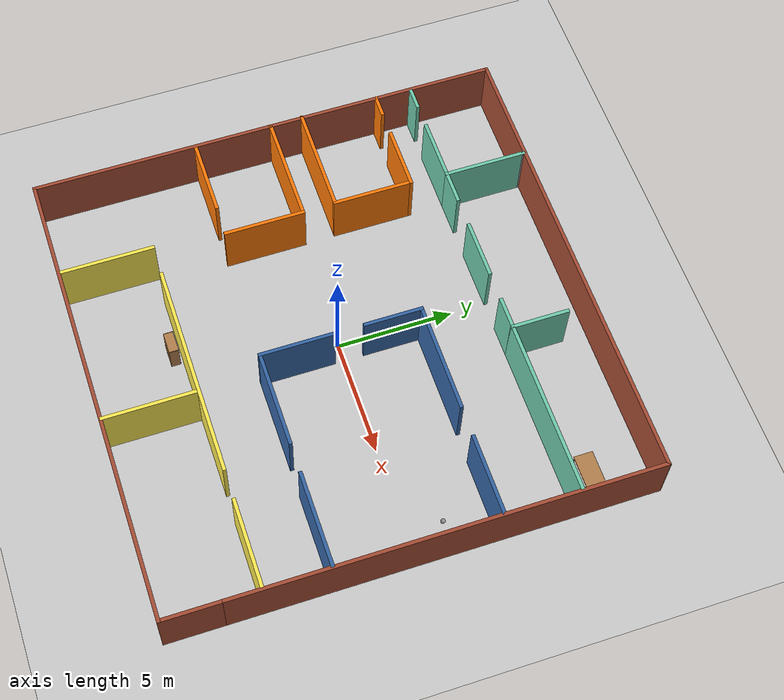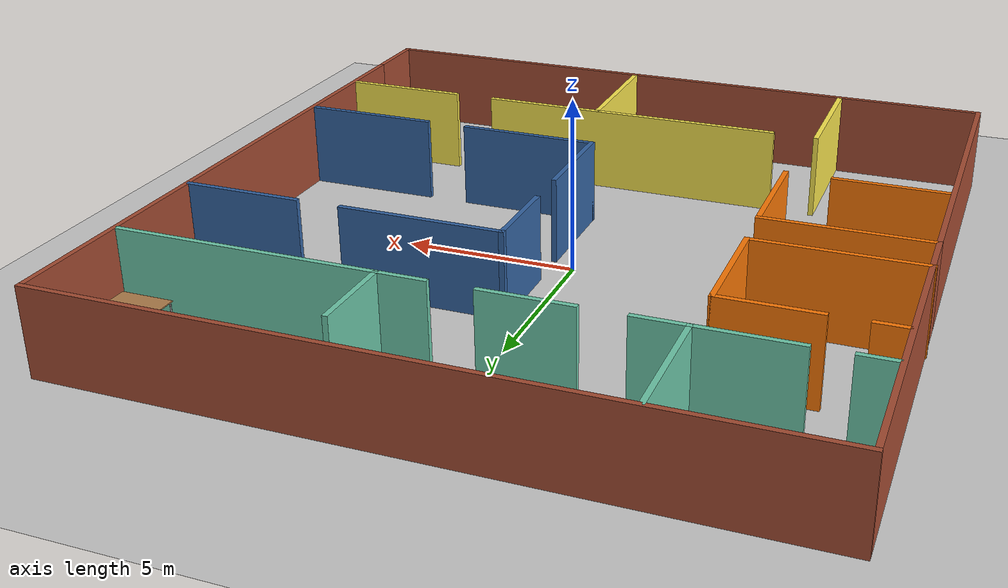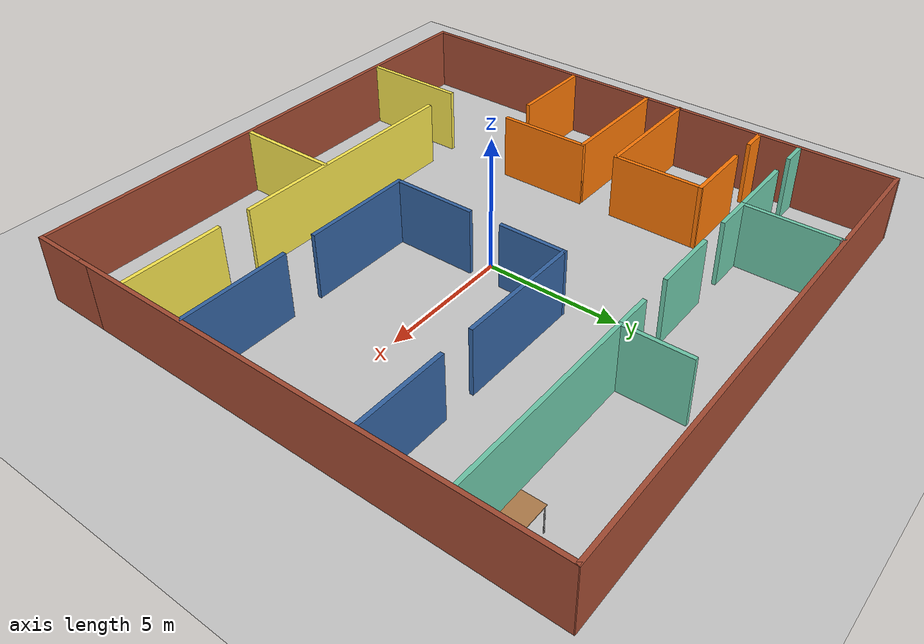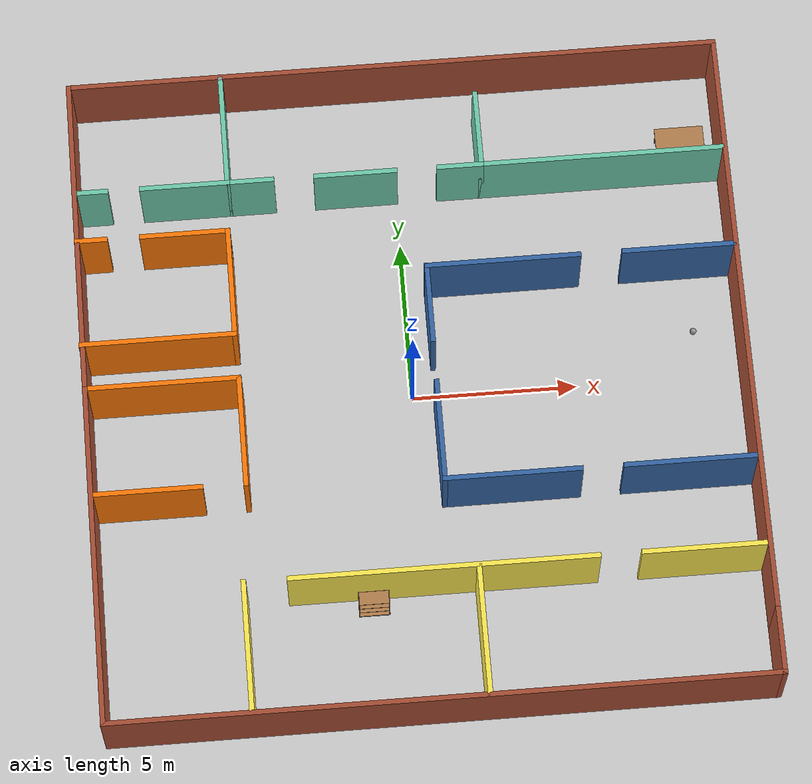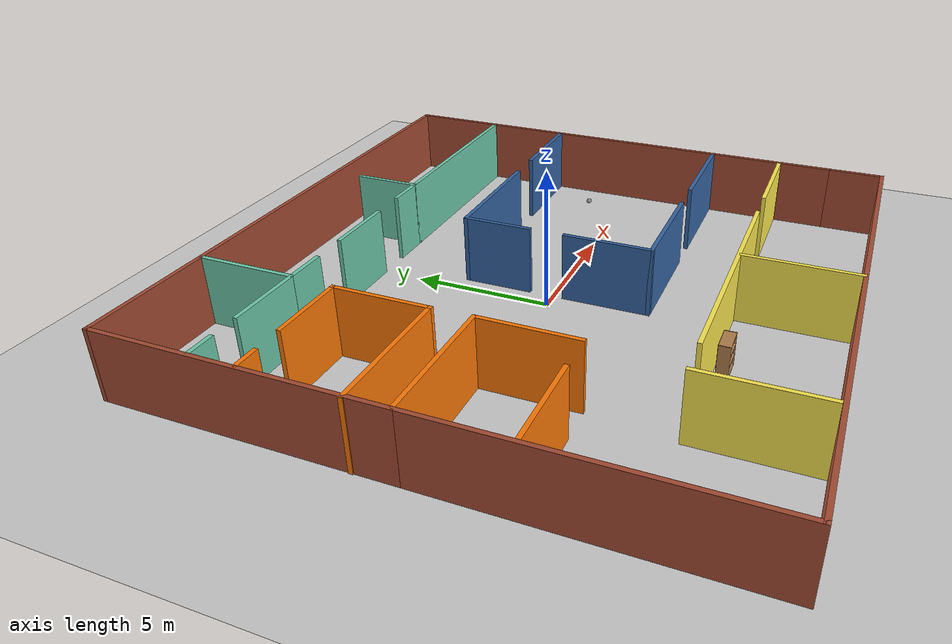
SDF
<sdf version="1.7">
 <world name="default">
  <plugin filename="libwelcome_message.so" name="hello"/>
  <light name="sun" type="directional">
   <pose>0 0 10 0 -0 0</pose>
   <diffuse>0.8 0.8 0.8 1</diffuse>
   <specular>0.2 0.2 0.2 1</specular>
   <attenuation>
    <range>1000</range>
    <constant>0.9</constant>
    <linear>0.01</linear>
    <quadratic>0.001</quadratic>
   </attenuation>
   <direction>-0.5 0.1 -0.9</direction>
   <spot><inner_angle>0</inner_angle><outer_angle>0</outer_angle><falloff>0</falloff></spot>
  </light>
  <model name="ground_plane">
   <static>1</static>
   <link name="link">
    <collision name="collision">
     <geometry><plane><normal>0 0 1</normal><size>100 100</size></plane></geometry>
     <surface>
      <contact><collide_bitmask>65535</collide_bitmask></contact>
      <friction><ode><mu>100</mu><mu2>50</mu2></ode></friction>
     </surface>
    </collision>
    <visual name="visual">
     <cast_shadows>0</cast_shadows>
     <geometry><plane><normal>0 0 1</normal><size>100 100</size></plane></geometry>
     <material>
      <script><uri>file://media/materials/scripts/gazebo.material</uri><name>Gazebo/Grey</name></script>
     </material>
    </visual>
   </link>
  </model>
  <gravity>0 0 -9.8</gravity>
  <magnetic_field>6e-06 2.3e-05 -4.2e-05</magnetic_field>
  <atmosphere type="adiabatic"/>
  <physics default="0" name="default_physics" type="ode">
   <max_step_size>0.001</max_step_size>
   <real_time_factor>1</real_time_factor>
   <real_time_update_rate>1000</real_time_update_rate>
  </physics>
  <scene><ambient>0.4 0.4 0.4 1</ambient><background>0.7 0.7 0.7 1</background><shadows>1</shadows></scene>
  <audio><device>default</device></audio>
  <spherical_coordinates>
   <surface_model>EARTH_WGS84</surface_model>
   <latitude_deg>0</latitude_deg>
   <longitude_deg>0</longitude_deg>
   <elevation>0</elevation>
   <heading_deg>0</heading_deg>
  </spherical_coordinates>
  <model name="Building">
   <pose>0.11271 -0.05702 0 0 -0 0</pose>
   <link name="Wall_20">
    <collision name="Wall_20_Collision">
     <geometry><box><size>10 0.15 2.5</size></box></geometry>
     <pose>0 0 1.25 0 -0 0</pose>
    </collision>
    <visual name="Wall_20_Visual">
     <pose>0 0 1.25 0 -0 0</pose>
     <geometry><box><size>10 0.15 2.5</size></box></geometry>
     <material>
      <script><uri>file://media/materials/scripts/gazebo.material</uri><name>Gazebo/Bricks</name></script>
      <ambient>1 1 1 1</ambient>
     </material>
     <meta><layer>0</layer></meta>
    </visual>
    <pose>-9.90862 5.175 0 0 -0 -1.5708</pose>
   </link>
   <link name="Wall_22">
    <collision name="Wall_22_Collision">
     <geometry><box><size>10.5 0.15 2.5</size></box></geometry>
     <pose>0 0 1.25 0 -0 0</pose>
    </collision>
    <visual name="Wall_22_Visual">
     <pose>0 0 1.25 0 -0 0</pose>
     <geometry><box><size>10.5 0.15 2.5</size></box></geometry>
     <material>
      <script><uri>file://media/materials/scripts/gazebo.material</uri><name>Gazebo/Bricks</name></script>
      <ambient>1 1 1 1</ambient>
     </material>
     <meta><layer>0</layer></meta>
    </visual>
    <pose>-9.90862 -4.925 0 0 -0 -1.5708</pose>
   </link>
   <link name="Wall_24">
    <collision name="Wall_24_Collision">
     <geometry><box><size>20 0.15 2.5</size></box></geometry>
     <pose>0 0 1.25 0 -0 0</pose>
    </collision>
    <visual name="Wall_24_Visual">
     <pose>0 0 1.25 0 -0 0</pose>
     <geometry><box><size>20 0.15 2.5</size></box></geometry>
     <material>
      <script><uri>file://media/materials/scripts/gazebo.material</uri><name>Gazebo/Bricks</name></script>
      <ambient>1 1 1 1</ambient>
     </material>
     <meta><layer>0</layer></meta>
    </visual>
    <pose>0.016381 10.1 0 0 -0 0</pose>
   </link>
   <link name="Wall_26">
    <collision name="Wall_26_Collision">
     <geometry><box><size>18.25 0.15 2.5</size></box></geometry>
     <pose>0 0 1.25 0 -0 0</pose>
    </collision>
    <visual name="Wall_26_Visual">
     <pose>0 0 1.25 0 -0 0</pose>
     <geometry><box><size>18.25 0.15 2.5</size></box></geometry>
     <material>
      <script><uri>file://media/materials/scripts/gazebo.material</uri><name>Gazebo/Bricks</name></script>
      <ambient>1 1 1 1</ambient>
     </material>
     <meta><layer>0</layer></meta>
    </visual>
    <pose>9.94138 1.01522 0 0 -0 -1.5708</pose>
   </link>
   <link name="Wall_28">
    <collision name="Wall_28_Collision">
     <geometry><box><size>20 0.15 2.5</size></box></geometry>
     <pose>0 0 1.25 0 -0 0</pose>
    </collision>
    <visual name="Wall_28_Visual">
     <pose>0 0 1.25 0 -0 0</pose>
     <geometry><box><size>20 0.15 2.5</size></box></geometry>
     <material>
      <script><uri>file://media/materials/scripts/gazebo.material</uri><name>Gazebo/Bricks</name></script>
      <ambient>1 1 1 1</ambient>
     </material>
     <meta><layer>0</layer></meta>
    </visual>
    <pose>0.016381 -10.1 0 0 -0 0</pose>
   </link>
   <link name="Wall_29">
    <collision name="Wall_29_Collision">
     <geometry><box><size>2.5 0.15 2.5</size></box></geometry>
     <pose>0 0 1.25 0 -0 0</pose>
    </collision>
    <visual name="Wall_29_Visual">
     <pose>0 0 1.25 0 -0 0</pose>
     <geometry><box><size>2.5 0.15 2.5</size></box></geometry>
     <material>
      <script><uri>file://media/materials/scripts/gazebo.material</uri><name>Gazebo/Bricks</name></script>
      <ambient>1 1 1 1</ambient>
     </material>
     <meta><layer>0</layer></meta>
    </visual>
    <pose>9.94138 -8.925 0 0 -0 1.5708</pose>
   </link>
   <link name="Wall_33">
    <collision name="Wall_33_Collision">
     <geometry><box><size>1 0.15 2.5</size></box></geometry>
     <pose>0 0 1.25 0 -0 0</pose>
    </collision>
    <visual name="Wall_33_Visual">
     <pose>0 0 1.25 0 -0 0</pose>
     <geometry><box><size>1 0.15 2.5</size></box></geometry>
     <material>
      <script><uri>file://media/materials/scripts/gazebo.material</uri><name>Gazebo/Grey</name></script>
      <ambient>0.435294 0.796078 0.67451 1</ambient>
     </material>
     <meta><layer>0</layer></meta>
    </visual>
    <pose>-9.38218 6.58003 0 0 -0 0</pose>
   </link>
   <link name="Wall_37">
    <collision name="Wall_37_Collision">
     <geometry><box><size>2.75 0.15 2.5</size></box></geometry>
     <pose>0 0 1.25 0 -0 0</pose>
    </collision>
    <visual name="Wall_37_Visual">
     <pose>0 0 1.25 0 -0 0</pose>
     <geometry><box><size>2.75 0.15 2.5</size></box></geometry>
     <material>
      <script><uri>file://media/materials/scripts/gazebo.material</uri><name>Gazebo/Grey</name></script>
      <ambient>0.435294 0.796078 0.67451 1</ambient>
     </material>
     <meta><layer>0</layer></meta>
    </visual>
    <pose>-6.55733 6.58022 0 0 -0 0.000148</pose>
   </link>
   <link name="Wall_38">
    <collision name="Wall_38_Collision">
     <geometry><box><size>3.6 0.15 2.5</size></box></geometry>
     <pose>0 0 1.25 0 -0 0</pose>
    </collision>
    <visual name="Wall_38_Visual">
     <pose>0 0 1.25 0 -0 0</pose>
     <geometry><box><size>3.6 0.15 2.5</size></box></geometry>
     <material>
      <script><uri>file://media/materials/scripts/gazebo.material</uri><name>Gazebo/Grey</name></script>
      <ambient>0.435294 0.796078 0.67451 1</ambient>
     </material>
     <meta><layer>0</layer></meta>
    </visual>
    <pose>-5.25748 8.30541 0 0 -0 1.5708</pose>
   </link>
   <link name="Wall_39">
    <collision name="Wall_39_Collision">
     <geometry><box><size>0.15 0.15 2.5</size></box></geometry>
     <pose>0 0 1.25 0 -0 0</pose>
    </collision>
    <visual name="Wall_39_Visual">
     <pose>0 0 1.25 0 -0 0</pose>
     <geometry><box><size>0.15 0.15 2.5</size></box></geometry>
     <material>
      <script><uri>file://media/materials/scripts/gazebo.material</uri><name>Gazebo/Grey</name></script>
      <ambient>1 1 1 1</ambient>
     </material>
     <meta><layer>0</layer></meta>
    </visual>
    <pose>-5.25748 10.0304 0 0 -0 0</pose>
   </link>
   <link name="Wall_41">
    <collision name="Wall_41_Collision">
     <geometry><box><size>1 0.15 2.5</size></box></geometry>
     <pose>0 0 1.25 0 -0 0</pose>
    </collision>
    <visual name="Wall_41_Visual">
     <pose>0 0 1.25 0 -0 0</pose>
     <geometry><box><size>1 0.15 2.5</size></box></geometry>
     <material>
      <script><uri>file://media/materials/scripts/gazebo.material</uri><name>Gazebo/Grey</name></script>
      <ambient>0.996078 0.47451 0.0196078 1</ambient>
     </material>
     <meta><layer>0</layer></meta>
    </visual>
    <pose>-9.47948 5.00841 0 0 -0 0</pose>
   </link>
   <link name="Wall_53">
    <collision name="Wall_53_Collision">
     <geometry><box><size>2.75 0.15 2.5</size></box></geometry>
     <pose>0 0 1.25 0 -0 0</pose>
    </collision>
    <visual name="Wall_53_Visual">
     <pose>0 0 1.25 0 -0 0</pose>
     <geometry><box><size>2.75 0.15 2.5</size></box></geometry>
     <material>
      <script><uri>file://media/materials/scripts/gazebo.material</uri><name>Gazebo/Grey</name></script>
      <ambient>0.996078 0.47451 0.0196078 1</ambient>
     </material>
     <meta><layer>0</layer></meta>
    </visual>
    <pose>-6.64148 5.00841 0 0 -0 0</pose>
   </link>
   <link name="Wall_55">
    <collision name="Wall_55_Collision">
     <geometry><box><size>3.50046 0.15 2.5</size></box></geometry>
     <pose>0 0 1.25 0 -0 0</pose>
    </collision>
    <visual name="Wall_55_Visual">
     <pose>0 0 1.25 0 -0 0</pose>
     <geometry><box><size>3.50046 0.15 2.5</size></box></geometry>
     <material>
      <script><uri>file://media/materials/scripts/gazebo.material</uri><name>Gazebo/Grey</name></script>
      <ambient>0.996078 0.47451 0.0196078 1</ambient>
     </material>
     <meta><layer>0</layer></meta>
    </visual>
    <pose>-5.34144 3.33318 0 0 -0 -1.57077</pose>
   </link>
   <link name="Wall_56">
    <collision name="Wall_56_Collision">
     <geometry><box><size>4.75 0.15 2.5</size></box></geometry>
     <pose>0 0 1.25 0 -0 0</pose>
    </collision>
    <visual name="Wall_56_Visual">
     <pose>0 0 1.25 0 -0 0</pose>
     <geometry><box><size>4.75 0.15 2.5</size></box></geometry>
     <material>
      <script><uri>file://media/materials/scripts/gazebo.material</uri><name>Gazebo/Grey</name></script>
      <ambient>0.996078 0.47451 0.0196078 1</ambient>
     </material>
     <meta><layer>0</layer></meta>
    </visual>
    <pose>-7.6414 1.65796 0 0 -0 3.14159</pose>
   </link>
   <link name="Wall_58">
    <collision name="Wall_58_Collision">
     <geometry><box><size>1.5 0.15 2.5</size></box></geometry>
     <pose>0 0 1.25 0 -0 0</pose>
    </collision>
    <visual name="Wall_58_Visual">
     <pose>0 0 1.25 0 -0 0</pose>
     <geometry><box><size>1.5 0.15 2.5</size></box></geometry>
     <material>
      <script><uri>file://media/materials/scripts/gazebo.material</uri><name>Gazebo/Grey</name></script>
      <ambient>0.435294 0.796078 0.67451 1</ambient>
     </material>
     <meta><layer>0</layer></meta>
    </visual>
    <pose>-4.58248 6.58041 0 0 -0 0</pose>
   </link>
   <link name="Wall_60">
    <collision name="Wall_60_Collision">
     <geometry><box><size>2.5532 0.15 2.5</size></box></geometry>
     <pose>0 0 1.25 0 -0 0</pose>
    </collision>
    <visual name="Wall_60_Visual">
     <pose>0 0 1.25 0 -0 0</pose>
     <geometry><box><size>2.5532 0.15 2.5</size></box></geometry>
     <material>
      <script><uri>file://media/materials/scripts/gazebo.material</uri><name>Gazebo/Grey</name></script>
      <ambient>0.435294 0.796078 0.67451 1</ambient>
     </material>
     <meta><layer>0</layer></meta>
    </visual>
    <pose>-1.35588 6.58041 0 0 -0 0</pose>
   </link>
   <link name="Wall_62">
    <collision name="Wall_62_Collision">
     <geometry><box><size>1.4468 0.15 2.5</size></box></geometry>
     <pose>0 0 1.25 0 -0 0</pose>
    </collision>
    <visual name="Wall_62_Visual">
     <pose>0 0 1.25 0 -0 0</pose>
     <geometry><box><size>1.4468 0.15 2.5</size></box></geometry>
     <material>
      <script><uri>file://media/materials/scripts/gazebo.material</uri><name>Gazebo/Grey</name></script>
      <ambient>0.435294 0.796078 0.67451 1</ambient>
     </material>
     <meta><layer>0</layer></meta>
    </visual>
    <pose>1.84412 6.58041 0 0 -0 0</pose>
   </link>
   <link name="Wall_63">
    <collision name="Wall_63_Collision">
     <geometry><box><size>2.5 0.15 2.5</size></box></geometry>
     <pose>0 0 1.25 0 -0 0</pose>
    </collision>
    <visual name="Wall_63_Visual">
     <pose>0 0 1.25 0 -0 0</pose>
     <geometry><box><size>2.5 0.15 2.5</size></box></geometry>
     <material>
      <script><uri>file://media/materials/scripts/gazebo.material</uri><name>Gazebo/Grey</name></script>
      <ambient>0.435294 0.796078 0.67451 1</ambient>
     </material>
     <meta><layer>0</layer></meta>
    </visual>
    <pose>2.49252 7.75541 0 0 -0 1.5708</pose>
   </link>
   <link name="Wall_65">
    <collision name="Wall_65_Collision">
     <geometry><box><size>7.5 0.15 2.5</size></box></geometry>
     <pose>0 0 1.25 0 -0 0</pose>
    </collision>
    <visual name="Wall_65_Visual">
     <pose>0 0 1.25 0 -0 0</pose>
     <geometry><box><size>7.5 0.15 2.5</size></box></geometry>
     <material>
      <script><uri>file://media/materials/scripts/gazebo.material</uri><name>Gazebo/Grey</name></script>
      <ambient>0.435294 0.796078 0.67451 1</ambient>
     </material>
     <meta><layer>0</layer></meta>
    </visual>
    <pose>6.16752 6.58041 0 0 -0 0</pose>
   </link>
   <link name="Wall_67">
    <collision name="Wall_67_Collision">
     <geometry><box><size>4.75 0.15 2.5</size></box></geometry>
     <pose>0 0 1.25 0 -0 0</pose>
    </collision>
    <visual name="Wall_67_Visual">
     <pose>0 0 1.25 0 -0 0</pose>
     <geometry><box><size>4.75 0.15 2.5</size></box></geometry>
     <material>
      <script><uri>file://media/materials/scripts/gazebo.material</uri><name>Gazebo/Grey</name></script>
      <ambient>0.996078 0.47451 0.0196078 1</ambient>
     </material>
     <meta><layer>0</layer></meta>
    </visual>
    <pose>-7.60862 0.25 0 0 -0 0</pose>
   </link>
   <link name="Wall_68">
    <collision name="Wall_68_Collision">
     <geometry><box><size>3.5 0.15 2.5</size></box></geometry>
     <pose>0 0 1.25 0 -0 0</pose>
    </collision>
    <visual name="Wall_68_Visual">
     <pose>0 0 1.25 0 -0 0</pose>
     <geometry><box><size>3.5 0.15 2.5</size></box></geometry>
     <material>
      <script><uri>file://media/materials/scripts/gazebo.material</uri><name>Gazebo/Grey</name></script>
      <ambient>0.996078 0.47451 0.0196078 1</ambient>
     </material>
     <meta><layer>0</layer></meta>
    </visual>
    <pose>-5.30862 -1.425 0 0 -0 -1.5708</pose>
   </link>
   <link name="Wall_71">
    <collision name="Wall_71_Collision">
     <geometry><box><size>3.25 0.15 2.5</size></box></geometry>
     <pose>0 0 1.25 0 -0 0</pose>
    </collision>
    <visual name="Wall_71_Visual">
     <pose>0 0 1.25 0 -0 0</pose>
     <geometry><box><size>3.25 0.15 2.5</size></box></geometry>
     <material>
      <script><uri>file://media/materials/scripts/gazebo.material</uri><name>Gazebo/Grey</name></script>
      <ambient>0.996078 0.47451 0.0196078 1</ambient>
     </material>
     <meta><layer>0</layer></meta>
    </visual>
    <pose>-8.20862 -3.1 0 0 -0 3.14159</pose>
   </link>
   <link name="Wall_73">
    <collision name="Wall_73_Collision">
     <geometry><box><size>4 0.15 2.5</size></box></geometry>
     <pose>0 0 1.25 0 -0 0</pose>
    </collision>
    <visual name="Wall_73_Visual">
     <pose>0 0 1.25 0 -0 0</pose>
     <geometry><box><size>4 0.15 2.5</size></box></geometry>
     <material>
      <script><uri>file://media/materials/scripts/gazebo.material</uri><name>Gazebo/Grey</name></script>
      <ambient>0.988235 0.913725 0.309804 1</ambient>
     </material>
     <meta><layer>0</layer></meta>
    </visual>
    <pose>-5.58379 -8.05698 0 0 -0 1.5708</pose>
   </link>
   <link name="Wall_76">
    <collision name="Wall_76_Collision">
     <geometry><box><size>9.25 0.15 2.5</size></box></geometry>
     <pose>0 0 1.25 0 -0 0</pose>
    </collision>
    <visual name="Wall_76_Visual">
     <pose>0 0 1.25 0 -0 0</pose>
     <geometry><box><size>9.25 0.15 2.5</size></box></geometry>
     <material>
      <script><uri>file://media/materials/scripts/gazebo.material</uri><name>Gazebo/Grey</name></script>
      <ambient>0.988235 0.913725 0.309804 1</ambient>
     </material>
     <meta><layer>0</layer></meta>
    </visual>
    <pose>0.316206 -6.13198 0 0 -0 0</pose>
   </link>
   <link name="Wall_78">
    <collision name="Wall_78_Collision">
     <geometry><box><size>3.75 0.15 2.5</size></box></geometry>
     <pose>0 0 1.25 0 -0 0</pose>
    </collision>
    <visual name="Wall_78_Visual">
     <pose>0 0 1.25 0 -0 0</pose>
     <geometry><box><size>3.75 0.15 2.5</size></box></geometry>
     <material>
      <script><uri>file://media/materials/scripts/gazebo.material</uri><name>Gazebo/Grey</name></script>
      <ambient>0.988235 0.913725 0.309804 1</ambient>
     </material>
     <meta><layer>0</layer></meta>
    </visual>
    <pose>8.01621 -6.13198 0 0 -0 0</pose>
   </link>
   <link name="Wall_80">
    <collision name="Wall_80_Collision">
     <geometry><box><size>4 0.15 2.5</size></box></geometry>
     <pose>0 0 1.25 0 -0 0</pose>
    </collision>
    <visual name="Wall_80_Visual">
     <pose>0 0 1.25 0 -0 0</pose>
     <geometry><box><size>4 0.15 2.5</size></box></geometry>
     <material>
      <script><uri>file://media/materials/scripts/gazebo.material</uri><name>Gazebo/Grey</name></script>
      <ambient>0.988235 0.913725 0.309804 1</ambient>
     </material>
     <meta><layer>0</layer></meta>
    </visual>
    <pose>1.34753 -8.12889 0 0 -0 -1.5708</pose>
   </link>
   <link name="Wall_82">
    <collision name="Wall_82_Collision">
     <geometry><box><size>3.46522 0.15 2.5</size></box></geometry>
     <pose>0 0 1.25 0 -0 0</pose>
    </collision>
    <visual name="Wall_82_Visual">
     <pose>0 0 1.25 0 -0 0</pose>
     <geometry><box><size>3.46522 0.15 2.5</size></box></geometry>
     <material>
      <script><uri>file://media/materials/scripts/gazebo.material</uri><name>Gazebo/Grey</name></script>
      <ambient>0.203922 0.396078 0.643137 1</ambient>
     </material>
     <meta><layer>0</layer></meta>
    </visual>
    <pose>8.21166 3.39611 0 0 -0 3.14159</pose>
   </link>
   <link name="Wall_87">
    <collision name="Wall_87_Collision">
     <geometry><box><size>3.21023 0.15 2.5</size></box></geometry>
     <pose>0 0 1.25 0 -0 0</pose>
    </collision>
    <visual name="Wall_87_Visual">
     <pose>0 0 1.25 0 -0 0</pose>
     <geometry><box><size>3.21023 0.15 2.5</size></box></geometry>
     <material>
      <script><uri>file://media/materials/scripts/gazebo.material</uri><name>Gazebo/Grey</name></script>
      <ambient>0.203922 0.396078 0.643137 1</ambient>
     </material>
     <meta><layer>0</layer></meta>
    </visual>
    <pose>0.569265 -1.87377 0 0 -0 -1.5708</pose>
   </link>
   <link name="Wall_88">
    <collision name="Wall_88_Collision">
     <geometry><box><size>4.18044 0.15 2.5</size></box></geometry>
     <pose>0 0 1.25 0 -0 0</pose>
    </collision>
    <visual name="Wall_88_Visual">
     <pose>0 0 1.25 0 -0 0</pose>
     <geometry><box><size>4.18044 0.15 2.5</size></box></geometry>
     <material>
      <script><uri>file://media/materials/scripts/gazebo.material</uri><name>Gazebo/Grey</name></script>
      <ambient>0.203922 0.396078 0.643137 1</ambient>
     </material>
     <meta><layer>0</layer></meta>
    </visual>
    <pose>2.58448 -3.40388 0 0 -0 0</pose>
   </link>
   <link name="Wall_90">
    <collision name="Wall_90_Collision">
     <geometry><box><size>4.06956 0.15 2.5</size></box></geometry>
     <pose>0 0 1.25 0 -0 0</pose>
    </collision>
    <visual name="Wall_90_Visual">
     <pose>0 0 1.25 0 -0 0</pose>
     <geometry><box><size>4.06956 0.15 2.5</size></box></geometry>
     <material>
      <script><uri>file://media/materials/scripts/gazebo.material</uri><name>Gazebo/Grey</name></script>
      <ambient>0.203922 0.396078 0.643137 1</ambient>
     </material>
     <meta><layer>0</layer></meta>
    </visual>
    <pose>7.90948 -3.40388 0 0 -0 0</pose>
   </link>
   <link name="Wall_93">
    <collision name="Wall_93_Collision">
     <geometry><box><size>2.53977 0.15 2.5</size></box></geometry>
     <pose>0 0 1.25 0 -0 0</pose>
    </collision>
    <visual name="Wall_93_Visual">
     <pose>0 0 1.25 0 -0 0</pose>
     <geometry><box><size>2.53977 0.15 2.5</size></box></geometry>
     <material>
      <script><uri>file://media/materials/scripts/gazebo.material</uri><name>Gazebo/Grey</name></script>
      <ambient>0.203922 0.396078 0.643137 1</ambient>
     </material>
     <meta><layer>0</layer></meta>
    </visual>
    <pose>0.569265 2.20123 0 0 -0 1.5708</pose>
   </link>
   <link name="Wall_94">
    <collision name="Wall_94_Collision">
     <geometry><box><size>4.75 0.15 2.5</size></box></geometry>
     <pose>0 0 1.25 0 -0 0</pose>
    </collision>
    <visual name="Wall_94_Visual">
     <pose>0 0 1.25 0 -0 0</pose>
     <geometry><box><size>4.75 0.15 2.5</size></box></geometry>
     <material>
      <script><uri>file://media/materials/scripts/gazebo.material</uri><name>Gazebo/Grey</name></script>
      <ambient>0.203922 0.396078 0.643137 1</ambient>
     </material>
     <meta><layer>0</layer></meta>
    </visual>
    <pose>2.86926 3.39611 0 0 -0 0</pose>
   </link>
   <static>1</static>
  </model>
  <model name="bookshelf">
   <static>1</static>
   <link name="link">
    <inertial><mass>1</mass></inertial>
    <collision name="back">
     <pose>0 0.005 0.6 0 -0 0</pose>
     <geometry><box><size>0.9 0.01 1.2</size></box></geometry>
    </collision>
    <visual name="visual1">
     <pose>0 0.005 0.6 0 -0 0</pose>
     <geometry><box><size>0.9 0.01 1.2</size></box></geometry>
     <material>
      <script><uri>file://media/materials/scripts/gazebo.material</uri><name>Gazebo/Wood</name></script>
     </material>
    </visual>
    <collision name="left_side">
     <pose>0.45 -0.195 0.6 0 -0 0</pose>
     <geometry><box><size>0.02 0.4 1.2</size></box></geometry>
    </collision>
    <visual name="visual2">
     <pose>0.45 -0.195 0.6 0 -0 0</pose>
     <geometry><box><size>0.02 0.4 1.2</size></box></geometry>
     <material>
      <script><uri>file://media/materials/scripts/gazebo.material</uri><name>Gazebo/Wood</name></script>
     </material>
    </visual>
    <collision name="right_side">
     <pose>-0.45 -0.195 0.6 0 -0 0</pose>
     <geometry><box><size>0.02 0.4 1.2</size></box></geometry>
    </collision>
    <visual name="visual3">
     <pose>-0.45 -0.195 0.6 0 -0 0</pose>
     <geometry><box><size>0.02 0.4 1.2</size></box></geometry>
     <material>
      <script><uri>file://media/materials/scripts/gazebo.material</uri><name>Gazebo/Wood</name></script>
     </material>
    </visual>
    <collision name="bottom">
     <pose>0 -0.195 0.03 0 -0 0</pose>
     <geometry><box><size>0.88 0.4 0.06</size></box></geometry>
    </collision>
    <visual name="visual4">
     <pose>0 -0.195 0.03 0 -0 0</pose>
     <geometry><box><size>0.88 0.4 0.06</size></box></geometry>
     <material>
      <script><uri>file://media/materials/scripts/gazebo.material</uri><name>Gazebo/Wood</name></script>
     </material>
    </visual>
    <collision name="top">
     <pose>0 -0.195 1.19 0 -0 0</pose>
     <geometry><box><size>0.88 0.4 0.02</size></box></geometry>
    </collision>
    <visual name="visual5">
     <pose>0 -0.195 1.19 0 -0 0</pose>
     <geometry><box><size>0.88 0.4 0.02</size></box></geometry>
     <material>
      <script><uri>file://media/materials/scripts/gazebo.material</uri><name>Gazebo/Wood</name></script>
     </material>
    </visual>
    <collision name="low_shelf">
     <pose>0 -0.195 0.43 0 -0 0</pose>
     <geometry><box><size>0.88 0.4 0.02</size></box></geometry>
    </collision>
    <visual name="visual6">
     <pose>0 -0.195 0.43 0 -0 0</pose>
     <geometry><box><size>0.88 0.4 0.02</size></box></geometry>
     <material>
      <script><uri>file://media/materials/scripts/gazebo.material</uri><name>Gazebo/Wood</name></script>
     </material>
    </visual>
    <collision name="high_shelf">
     <pose>0 -0.195 0.8 0 -0 0</pose>
     <geometry><box><size>0.88 0.4 0.02</size></box></geometry>
    </collision>
    <visual name="visual7">
     <pose>0 -0.195 0.8 0 -0 0</pose>
     <geometry><box><size>0.88 0.4 0.02</size></box></geometry>
     <material>
      <script><uri>file://media/materials/scripts/gazebo.material</uri><name>Gazebo/Wood</name></script>
     </material>
    </visual>
   </link>
   <pose>-1.67387 -6.3838 0 0 -0 0</pose>
  </model>
  <model name="table">
   <static>1</static>
   <link name="link">
    <collision name="surface">
     <pose>0 0 1 0 -0 0</pose>
     <geometry><box><size>1.5 0.8 0.03</size></box></geometry>
     <surface><friction><ode><mu>0.6</mu><mu2>0.6</mu2></ode></friction></surface>
    </collision>
    <visual name="visual1">
     <pose>0 0 1 0 -0 0</pose>
     <geometry><box><size>1.5 0.8 0.03</size></box></geometry>
     <material>
      <script><uri>file://media/materials/scripts/gazebo.material</uri><name>Gazebo/Wood</name></script>
     </material>
    </visual>
    <collision name="front_left_leg">
     <pose>0.68 0.38 0.5 0 -0 0</pose>
     <geometry><cylinder><radius>0.02</radius><length>1</length></cylinder></geometry>
    </collision>
    <visual name="front_left_leg">
     <pose>0.68 0.38 0.5 0 -0 0</pose>
     <geometry><cylinder><radius>0.02</radius><length>1</length></cylinder></geometry>
     <material>
      <script><uri>file://media/materials/scripts/gazebo.material</uri><name>Gazebo/Grey</name></script>
     </material>
    </visual>
    <collision name="front_right_leg">
     <pose>0.68 -0.38 0.5 0 -0 0</pose>
     <geometry><cylinder><radius>0.02</radius><length>1</length></cylinder></geometry>
    </collision>
    <visual name="front_right_leg">
     <pose>0.68 -0.38 0.5 0 -0 0</pose>
     <geometry><cylinder><radius>0.02</radius><length>1</length></cylinder></geometry>
     <material>
      <script><uri>file://media/materials/scripts/gazebo.material</uri><name>Gazebo/Grey</name></script>
     </material>
    </visual>
    <collision name="back_right_leg">
     <pose>-0.68 -0.38 0.5 0 -0 0</pose>
     <geometry><cylinder><radius>0.02</radius><length>1</length></cylinder></geometry>
    </collision>
    <visual name="back_right_leg">
     <pose>-0.68 -0.38 0.5 0 -0 0</pose>
     <geometry><cylinder><radius>0.02</radius><length>1</length></cylinder></geometry>
     <material>
      <script><uri>file://media/materials/scripts/gazebo.material</uri><name>Gazebo/Grey</name></script>
     </material>
    </visual>
    <collision name="back_left_leg">
     <pose>-0.68 0.38 0.5 0 -0 0</pose>
     <geometry><cylinder><radius>0.02</radius><length>1</length></cylinder></geometry>
    </collision>
    <visual name="back_left_leg">
     <pose>-0.68 0.38 0.5 0 -0 0</pose>
     <geometry><cylinder><radius>0.02</radius><length>1</length></cylinder></geometry>
     <material>
      <script><uri>file://media/materials/scripts/gazebo.material</uri><name>Gazebo/Grey</name></script>
     </material>
    </visual>
   </link>
   <pose>8.84678 7.50058 0 0 -0 0</pose>
  </model>
  <model name="my_ball">
   <link name="link_0">
    <inertial>
     <mass>1</mass>
     <inertia><ixx>0.1</ixx><ixy>0</ixy><ixz>0</ixz><iyy>0.1</iyy><iyz>0</iyz><izz>0.1</izz></inertia>
    </inertial>
    <visual name="visual">
     <geometry><sphere><radius>0.1</radius></sphere></geometry>
     <material>
      <lighting>1</lighting>
      <script><uri>file://media/materials/scripts/gazebo.material</uri><name>Gazebo/Grey</name></script>
      <shader type="pixel"><normal_map>__default__</normal_map></shader>
      <ambient>1 1 1 1</ambient>
      <diffuse>1 1 1 1</diffuse>
      <specular>1 1 1 1</specular>
      <emissive>1 1 1 1</emissive>
     </material>
    </visual>
    <collision name="collision">
     <geometry><sphere><radius>0.1</radius></sphere></geometry>
     <surface>
      <friction>
       <ode><mu>1</mu><mu2>1</mu2><fdir1>0 0 0</fdir1><slip1>0</slip1><slip2>0</slip2></ode>
       <torsional>
        <coefficient>1</coefficient>
        <patch_radius>0</patch_radius>
        <surface_radius>0</surface_radius>
        <use_patch_radius>1</use_patch_radius>
        <ode><slip>0</slip></ode>
       </torsional>
      </friction>
      <bounce><restitution_coefficient>0</restitution_coefficient><threshold>1e+06</threshold></bounce>
      <contact>
       <collide_without_contact>0</collide_without_contact>
       <collide_without_contact_bitmask>1</collide_without_contact_bitmask>
       <collide_bitmask>1</collide_bitmask>
       <ode>
        <soft_cfm>0</soft_cfm>
        <soft_erp>0.2</soft_erp>
        <kp>1e+13</kp>
        <kd>1</kd>
        <max_vel>0.01</max_vel>
        <min_depth>0</min_depth>
       </ode>
       <bullet>
        <split_impulse>1</split_impulse>
        <split_impulse_penetration_threshold>-0.01</split_impulse_penetration_threshold>
        <soft_cfm>0</soft_cfm>
        <soft_erp>0.2</soft_erp>
        <kp>1e+13</kp>
        <kd>1</kd>
       </bullet>
      </contact>
     </surface>
    </collision>
   </link>
   <static>0</static>
   <pose>8.71194 1.48579 0.1 0 -0 0</pose>
  </model>
 </world>
</sdf>
